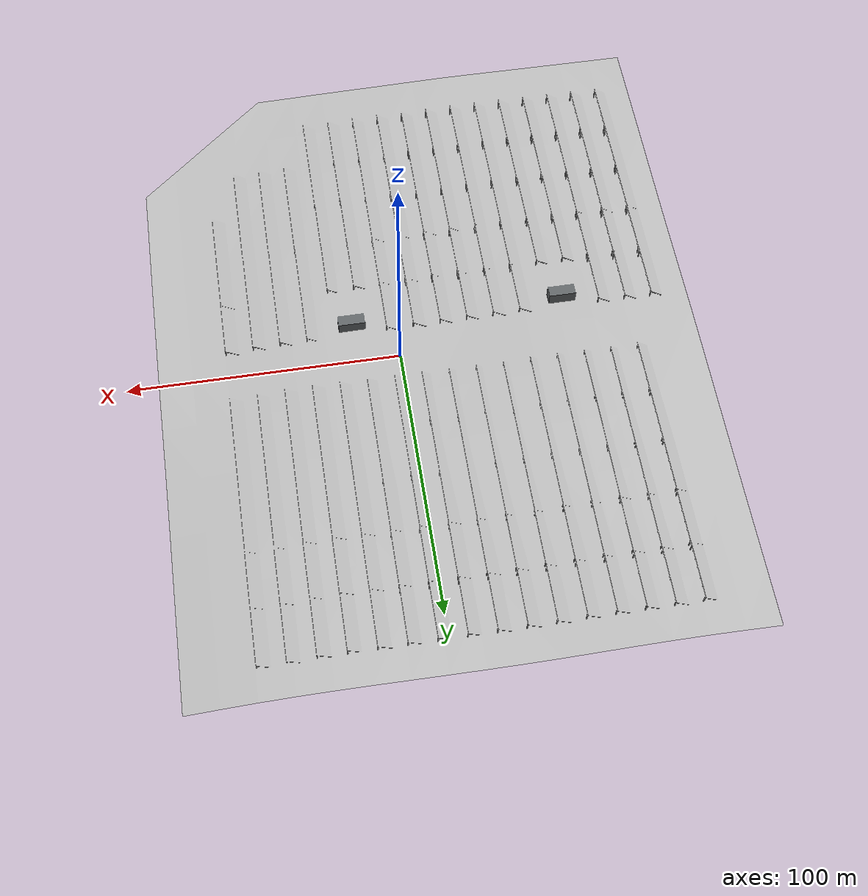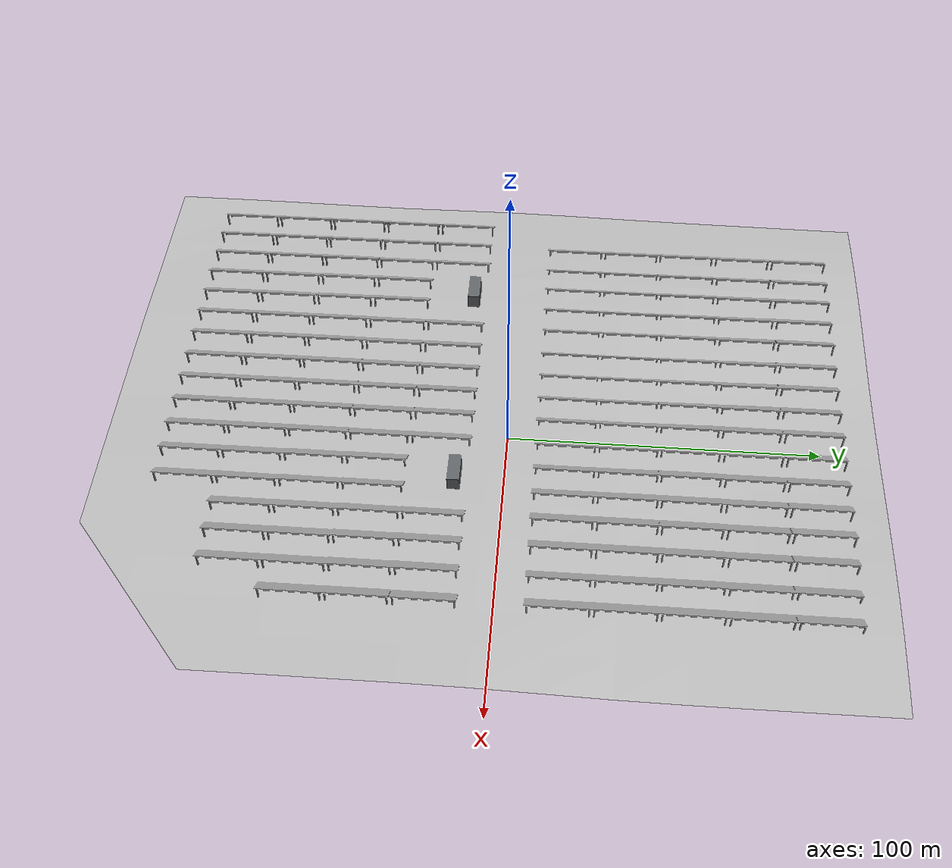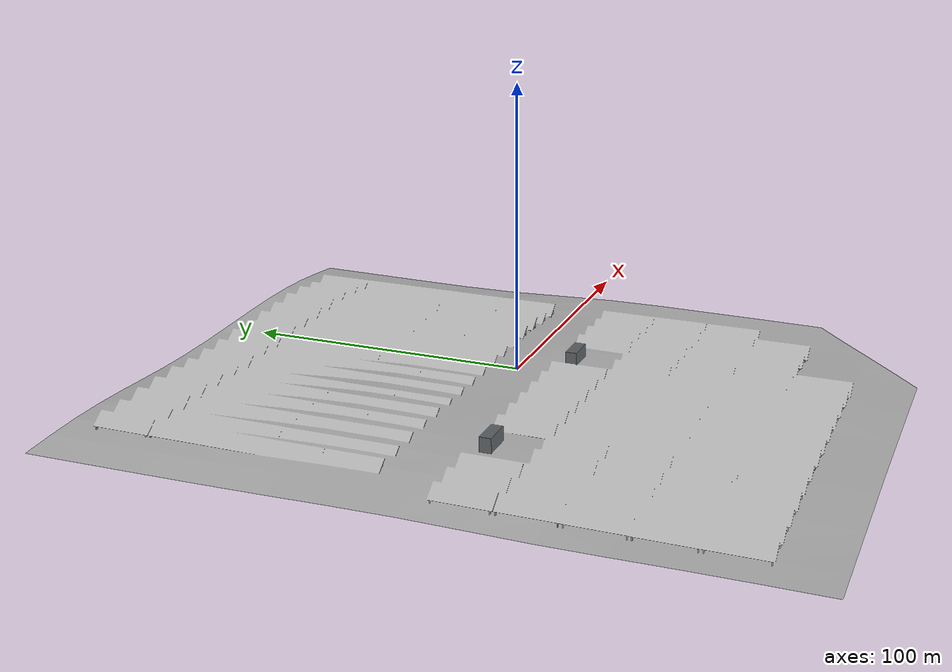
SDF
<sdf version="1.6">
 <world name="default">
  <light name="sun" type="directional">
   <cast_shadows>0</cast_shadows>
   <pose>0 0 10 0 -0 0</pose>
   <diffuse>1 1 1 1</diffuse>
   <specular>0.2 0.2 0.2 1</specular>
   <attenuation>
    <range>1000</range>
    <constant>0.9</constant>
    <linear>0.01</linear>
    <quadratic>0.001</quadratic>
   </attenuation>
   <direction>-0.5 -0.5 -1</direction>
  </light>
  <physics name="default_physics" default="0" type="ode">
   <max_step_size>0.0025</max_step_size>
   <real_time_factor>1</real_time_factor>
   <real_time_update_rate>1000</real_time_update_rate>
  </physics>
  <scene>
   <ambient>1 1 1 1</ambient>
   <background>1 1 1 1</background>
   <shadows>1</shadows>
   <sky><clouds><speed>12</speed></clouds></sky>
  </scene>
  <spherical_coordinates>
   <surface_model>EARTH_WGS84</surface_model>
   <latitude_deg>0</latitude_deg>
   <longitude_deg>0</longitude_deg>
   <elevation>0</elevation>
   <heading_deg>0</heading_deg>
  </spherical_coordinates>
  <gravity>0 0 -9.8</gravity>
  <magnetic_field>6e-06 2.3e-05 -4.2e-05</magnetic_field>
  <atmosphere type="adiabatic"/>
  <model name="agriculture_geom">
   <link name="agriculture_world_link">
    <inertial>
     <mass>1</mass>
     <inertia><ixx>1</ixx><ixy>0</ixy><ixz>0</ixz><iyy>1</iyy><iyz>0</iyz><izz>1</izz></inertia>
    </inertial>
    <collision name="agriculture_world_link_collision">
     <geometry>
      <mesh><scale>1 1 1</scale><uri>/opt/durable_ws/src/Multi_Robot_Simulation/meshes/evora_farm.dae</uri></mesh>
     </geometry>
    </collision>
    <visual name="agriculture_world_link_visual">
     <geometry>
      <mesh><scale>1 1 1</scale><uri>/opt/durable_ws/src/Multi_Robot_Simulation/meshes/evora_farm.dae</uri></mesh>
     </geometry>
    </visual>
   </link>
   <static>1</static>
   <pose>-105.2 109.231 -0.5 0 -0 0</pose>
  </model>
 </world>
</sdf>
